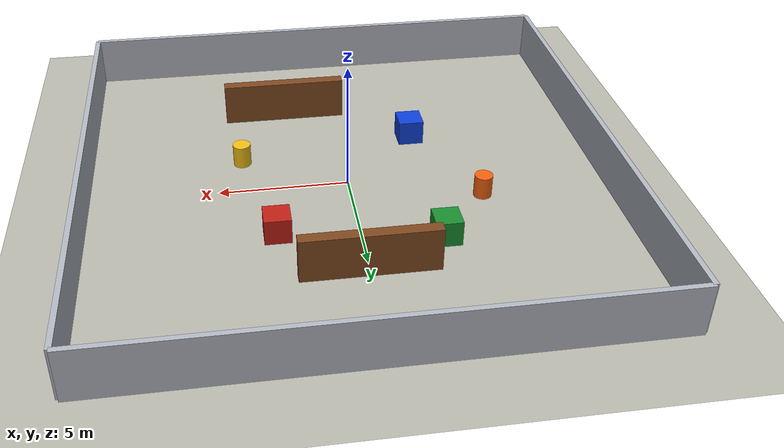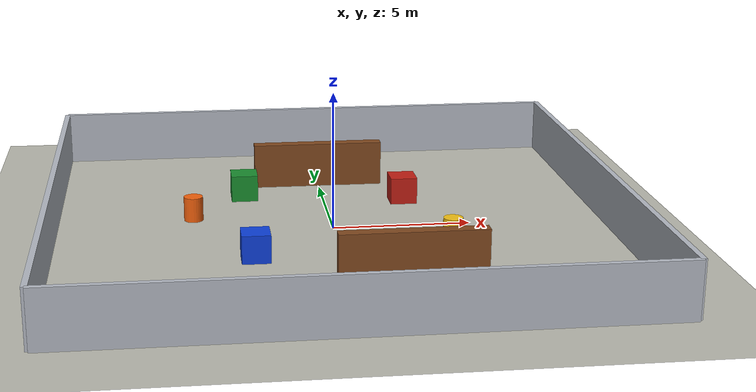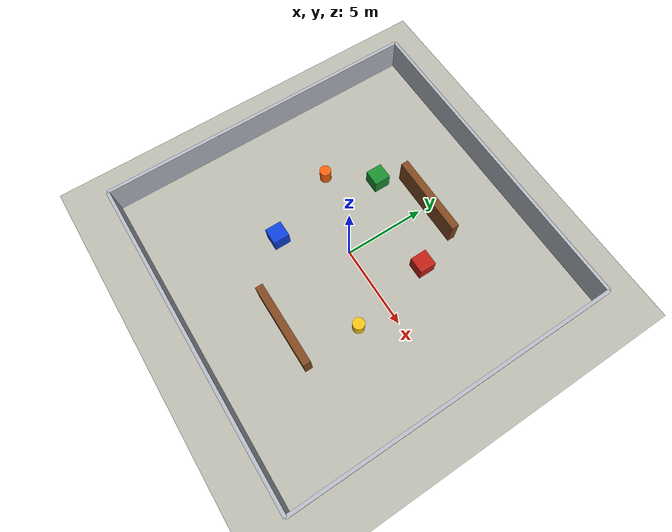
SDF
<?xml version="1.0" ?>
<sdf version="1.8">
  <world name="warehouse_world">

    <physics name="1ms" type="ignored">
      <max_step_size>0.001</max_step_size>
      <real_time_factor>1.0</real_time_factor>
    </physics>

    <plugin filename="gz-sim-physics-system"
            name="gz::sim::systems::Physics"/>
    <plugin filename="gz-sim-user-commands-system"
            name="gz::sim::systems::UserCommands"/>
    <plugin filename="gz-sim-scene-broadcaster-system"
            name="gz::sim::systems::SceneBroadcaster"/>
    <plugin filename="gz-sim-contact-system"
            name="gz::sim::systems::Contact"/>
    <plugin filename="gz-sim-sensors-system"
            name="gz::sim::systems::Sensors">
      <render_engine>ogre2</render_engine>
    </plugin>

    <scene>
      <ambient>0.55 0.55 0.55 1</ambient>
      <background>0.78 0.86 0.94 1</background>
      <shadows>true</shadows>
    </scene>

    <light name="sun" type="directional">
      <cast_shadows>true</cast_shadows>
      <pose>0 0 10 0 0 0</pose>
      <diffuse>1.0 0.95 0.85 1</diffuse>
      <specular>0.3 0.3 0.3 1</specular>
      <direction>-0.4 0.2 -0.9</direction>
    </light>

    <model name="ground_plane">
      <static>true</static>
      <link name="link">
        <collision name="collision">
          <geometry>
            <plane>
              <normal>0 0 1</normal>
              <size>100 100</size>
            </plane>
          </geometry>
        </collision>
        <visual name="visual">
          <geometry>
            <plane>
              <normal>0 0 1</normal>
              <size>100 100</size>
            </plane>
          </geometry>
          <material>
            <ambient>0.72 0.72 0.68 1</ambient>
            <diffuse>0.72 0.72 0.68 1</diffuse>
            <specular>0.15 0.15 0.15 1</specular>
          </material>
        </visual>
      </link>
    </model>

    <model name="wall_north">
      <static>true</static>
      <pose>0 10 1 0 0 0</pose>
      <link name="link">
        <collision name="collision">
          <geometry><box><size>20 0.2 2</size></box></geometry>
        </collision>
        <visual name="visual">
          <geometry><box><size>20 0.2 2</size></box></geometry>
          <material>
            <ambient>0.7 0.72 0.76 1</ambient>
            <diffuse>0.7 0.72 0.76 1</diffuse>
            <specular>0.2 0.2 0.2 1</specular>
          </material>
        </visual>
      </link>
    </model>

    <model name="wall_south">
      <static>true</static>
      <pose>0 -10 1 0 0 0</pose>
      <link name="link">
        <collision name="collision">
          <geometry><box><size>20 0.2 2</size></box></geometry>
        </collision>
        <visual name="visual">
          <geometry><box><size>20 0.2 2</size></box></geometry>
          <material>
            <ambient>0.7 0.72 0.76 1</ambient>
            <diffuse>0.7 0.72 0.76 1</diffuse>
            <specular>0.2 0.2 0.2 1</specular>
          </material>
        </visual>
      </link>
    </model>

    <model name="wall_east">
      <static>true</static>
      <pose>10 0 1 0 0 0</pose>
      <link name="link">
        <collision name="collision">
          <geometry><box><size>0.2 20 2</size></box></geometry>
        </collision>
        <visual name="visual">
          <geometry><box><size>0.2 20 2</size></box></geometry>
          <material>
            <ambient>0.7 0.72 0.76 1</ambient>
            <diffuse>0.7 0.72 0.76 1</diffuse>
            <specular>0.2 0.2 0.2 1</specular>
          </material>
        </visual>
      </link>
    </model>

    <model name="wall_west">
      <static>true</static>
      <pose>-10 0 1 0 0 0</pose>
      <link name="link">
        <collision name="collision">
          <geometry><box><size>0.2 20 2</size></box></geometry>
        </collision>
        <visual name="visual">
          <geometry><box><size>0.2 20 2</size></box></geometry>
          <material>
            <ambient>0.7 0.72 0.76 1</ambient>
            <diffuse>0.7 0.72 0.76 1</diffuse>
            <specular>0.2 0.2 0.2 1</specular>
          </material>
        </visual>
      </link>
    </model>

    <model name="red_crate_stack">
      <static>true</static>
      <pose>3 3 0.5 0 0 0</pose>
      <link name="link">
        <collision name="collision">
          <geometry><box><size>1 1 1</size></box></geometry>
        </collision>
        <visual name="visual">
          <geometry><box><size>1 1 1</size></box></geometry>
          <material>
            <ambient>0.75 0.12 0.08 1</ambient>
            <diffuse>0.75 0.12 0.08 1</diffuse>
            <specular>0.15 0.1 0.1 1</specular>
          </material>
        </visual>
      </link>
    </model>

    <model name="blue_shipping_bin">
      <static>true</static>
      <pose>-3 -3 0.5 0 0 0</pose>
      <link name="link">
        <collision name="collision">
          <geometry><box><size>1 1 1</size></box></geometry>
        </collision>
        <visual name="visual">
          <geometry><box><size>1 1 1</size></box></geometry>
          <material>
            <ambient>0.05 0.25 0.85 1</ambient>
            <diffuse>0.05 0.25 0.85 1</diffuse>
            <specular>0.1 0.1 0.2 1</specular>
          </material>
        </visual>
      </link>
    </model>

    <model name="green_pallet_load">
      <static>true</static>
      <pose>-3 4 0.5 0 0 0</pose>
      <link name="link">
        <collision name="collision">
          <geometry><box><size>1 1 1</size></box></geometry>
        </collision>
        <visual name="visual">
          <geometry><box><size>1 1 1</size></box></geometry>
          <material>
            <ambient>0.1 0.55 0.18 1</ambient>
            <diffuse>0.1 0.55 0.18 1</diffuse>
            <specular>0.1 0.15 0.1 1</specular>
          </material>
        </visual>
      </link>
    </model>

    <model name="yellow_barrel">
      <static>true</static>
      <pose>4 -2 0.45 0 0 0</pose>
      <link name="link">
        <collision name="collision">
          <geometry><cylinder><radius>0.35</radius><length>0.9</length></cylinder></geometry>
        </collision>
        <visual name="visual">
          <geometry><cylinder><radius>0.35</radius><length>0.9</length></cylinder></geometry>
          <material>
            <ambient>0.95 0.75 0.08 1</ambient>
            <diffuse>0.95 0.75 0.08 1</diffuse>
            <specular>0.2 0.18 0.05 1</specular>
          </material>
        </visual>
      </link>
    </model>

    <model name="orange_barrel">
      <static>true</static>
      <pose>-5 1.5 0.45 0 0 0</pose>
      <link name="link">
        <collision name="collision">
          <geometry><cylinder><radius>0.35</radius><length>0.9</length></cylinder></geometry>
        </collision>
        <visual name="visual">
          <geometry><cylinder><radius>0.35</radius><length>0.9</length></cylinder></geometry>
          <material>
            <ambient>0.95 0.38 0.05 1</ambient>
            <diffuse>0.95 0.38 0.05 1</diffuse>
            <specular>0.2 0.12 0.05 1</specular>
          </material>
        </visual>
      </link>
    </model>

    <model name="storage_rack_left">
      <static>true</static>
      <pose>0 5.5 0.85 0 0 0</pose>
      <link name="link">
        <collision name="collision">
          <geometry><box><size>5.0 0.45 1.7</size></box></geometry>
        </collision>
        <visual name="visual">
          <geometry><box><size>5.0 0.45 1.7</size></box></geometry>
          <material>
            <ambient>0.5 0.28 0.12 1</ambient>
            <diffuse>0.5 0.28 0.12 1</diffuse>
            <specular>0.12 0.08 0.04 1</specular>
          </material>
        </visual>
      </link>
    </model>

    <model name="storage_rack_right">
      <static>true</static>
      <pose>2 -5.5 0.85 0 0 0</pose>
      <link name="link">
        <collision name="collision">
          <geometry><box><size>5.0 0.45 1.7</size></box></geometry>
        </collision>
        <visual name="visual">
          <geometry><box><size>5.0 0.45 1.7</size></box></geometry>
          <material>
            <ambient>0.5 0.28 0.12 1</ambient>
            <diffuse>0.5 0.28 0.12 1</diffuse>
            <specular>0.12 0.08 0.04 1</specular>
          </material>
        </visual>
      </link>
    </model>

  </world>
</sdf>
